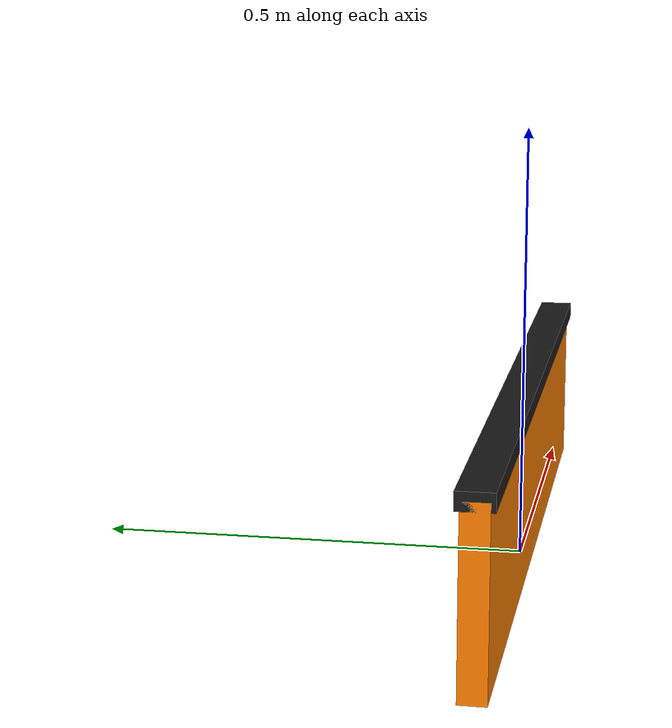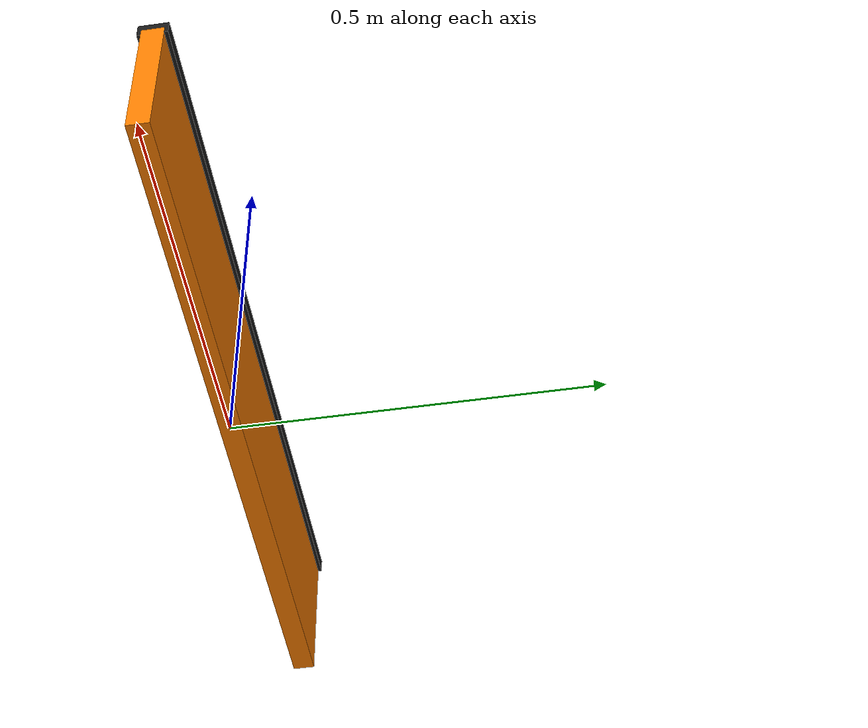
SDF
<?xml version="1.0" ?>
<sdf version="1.8">
  <model name="delivery_track_boundary">
    <static>true</static>
    <link name="link">
      <!-- Main Solid Panel (Bright Orange for visibility) -->
      <visual name="panel">
        <pose>0 0 0.1 0 0 0</pose>
        <geometry><box><size>1.0 0.03 0.2</size></box></geometry>
        <material>
          <ambient>1.0 0.5 0 1</ambient>
          <diffuse>1.0 0.5 0 1</diffuse>
          <specular>1 1 1 1</specular>
          <emissive>0.5 0.25 0 1</emissive>
        </material>
      </visual>

      <collision name="panel_c">
        <pose>0 0 0.1 0 0 0</pose>
        <geometry><box><size>1.0 0.03 0.2</size></box></geometry>
      </collision>

      <!-- Black top cap -->
      <visual name="top_rail">
        <pose>0 0 0.2 0 0 0</pose>
        <geometry><box><size>1.0 0.04 0.02</size></box></geometry>
        <material><ambient>0.1 0.1 0.1 1</ambient><diffuse>0.1 0.1 0.1 1</diffuse></material>
      </visual>
    </link>
  </model>
</sdf>
